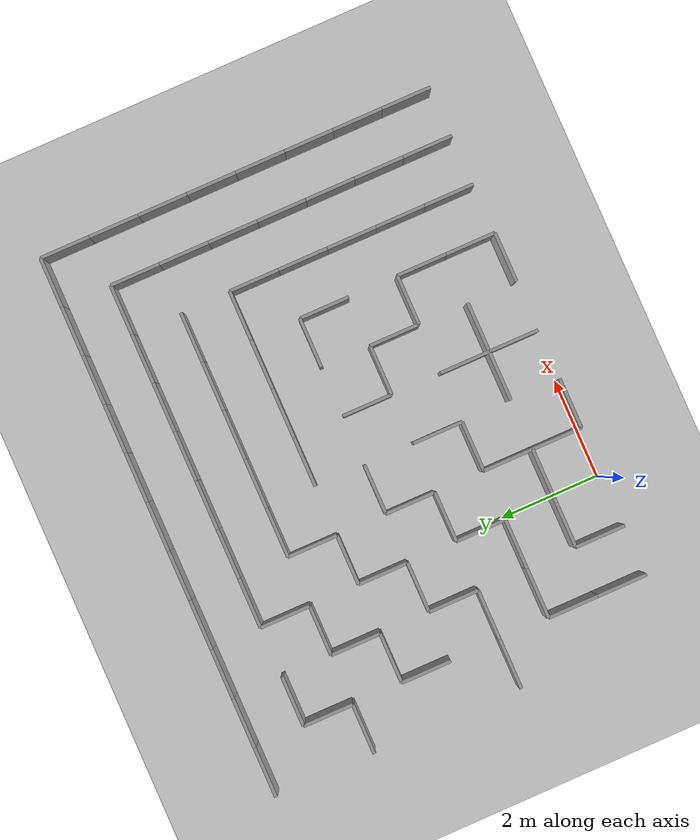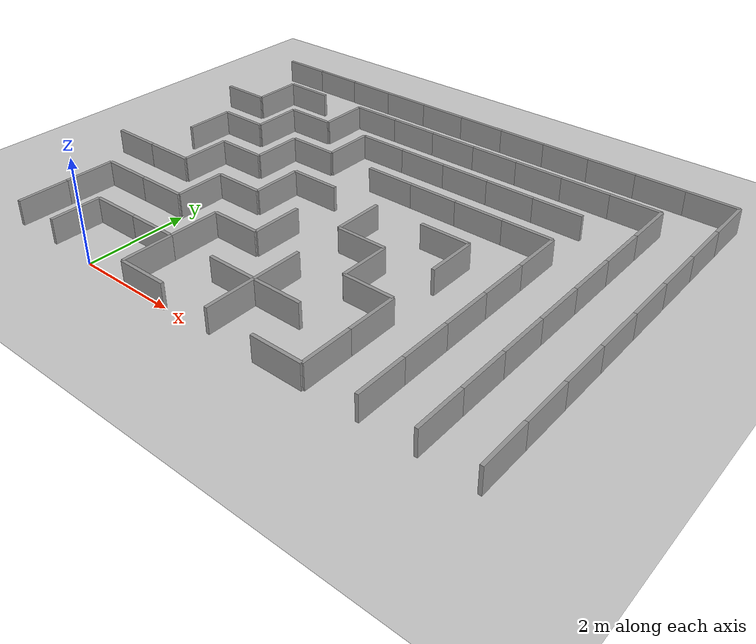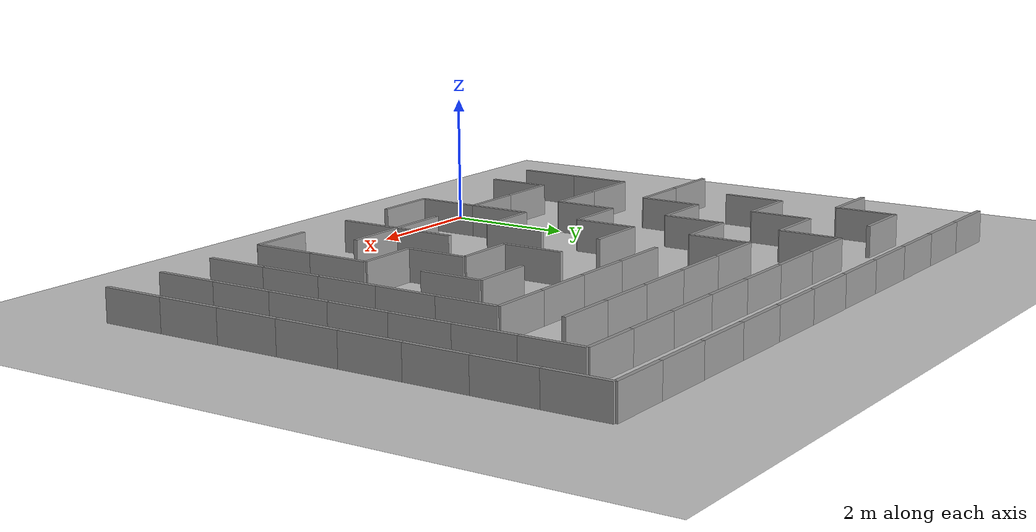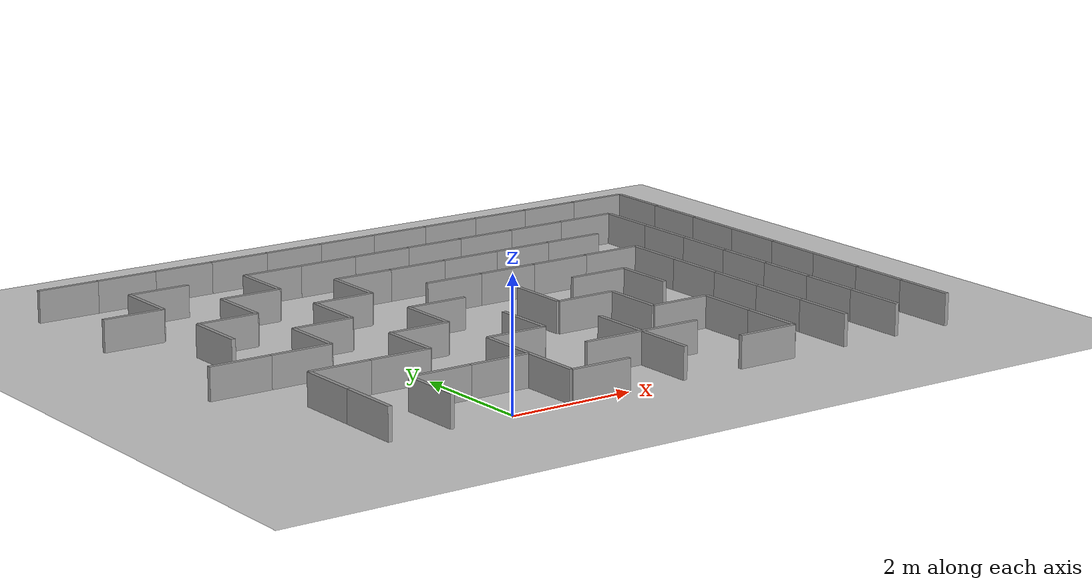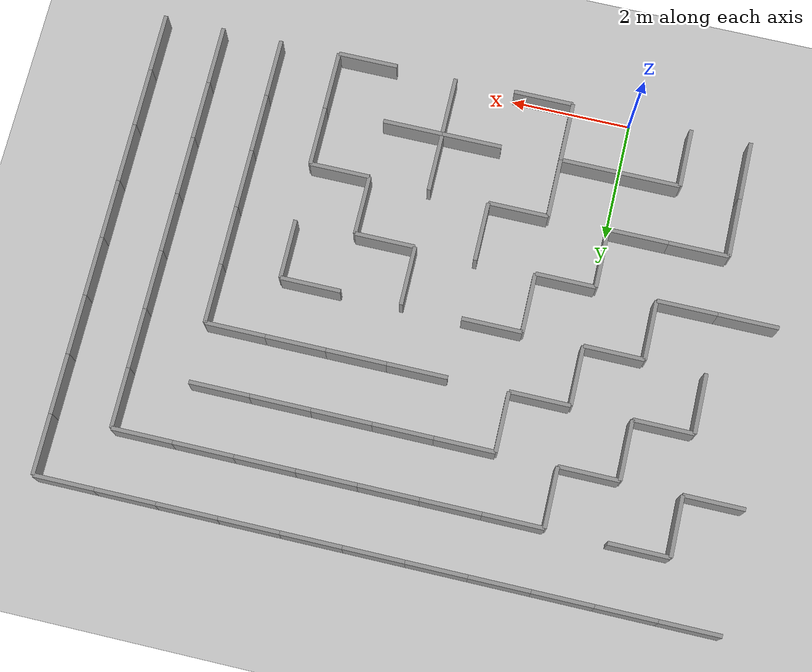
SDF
<sdf version="1.7">
 <world name="maze_world">
  <include><uri>model://sun</uri></include>
  <include><uri>model://ground_plane</uri></include>
  <model name="wall_5">
   <static>true</static>
   <pose>-2.5 8.0 0.25 0 0 0</pose>
   <link name="link">
    <collision name="collision"><geometry><box><size>1.0 0.066 0.5</size></box></geometry></collision>
    <visual name="visual">
     <geometry><box><size>1.0 0.066 0.5</size></box></geometry>
     <material>
      <script><uri>file://media/materials/scripts/gazebo.material</uri><name>Gazebo/Grey</name></script>
     </material>
    </visual>
   </link>
  </model>
  <model name="wall_6">
   <static>true</static>
   <pose>-1.5 8.0 0.25 0 0 0</pose>
   <link name="link">
    <collision name="collision"><geometry><box><size>1.0 0.066 0.5</size></box></geometry></collision>
    <visual name="visual">
     <geometry><box><size>1.0 0.066 0.5</size></box></geometry>
     <material>
      <script><uri>file://media/materials/scripts/gazebo.material</uri><name>Gazebo/Grey</name></script>
     </material>
    </visual>
   </link>
  </model>
  <model name="wall_7">
   <static>true</static>
   <pose>-0.5 8.0 0.25 0 0 0</pose>
   <link name="link">
    <collision name="collision"><geometry><box><size>1.0 0.066 0.5</size></box></geometry></collision>
    <visual name="visual">
     <geometry><box><size>1.0 0.066 0.5</size></box></geometry>
     <material>
      <script><uri>file://media/materials/scripts/gazebo.material</uri><name>Gazebo/Grey</name></script>
     </material>
    </visual>
   </link>
  </model>
  <model name="wall_8">
   <static>true</static>
   <pose>0.5 8.0 0.25 0 0 0</pose>
   <link name="link">
    <collision name="collision"><geometry><box><size>1.0 0.066 0.5</size></box></geometry></collision>
    <visual name="visual">
     <geometry><box><size>1.0 0.066 0.5</size></box></geometry>
     <material>
      <script><uri>file://media/materials/scripts/gazebo.material</uri><name>Gazebo/Grey</name></script>
     </material>
    </visual>
   </link>
  </model>
  <model name="wall_9">
   <static>true</static>
   <pose>1.5 8.0 0.25 0 0 0</pose>
   <link name="link">
    <collision name="collision"><geometry><box><size>1.0 0.066 0.5</size></box></geometry></collision>
    <visual name="visual">
     <geometry><box><size>1.0 0.066 0.5</size></box></geometry>
     <material>
      <script><uri>file://media/materials/scripts/gazebo.material</uri><name>Gazebo/Grey</name></script>
     </material>
    </visual>
   </link>
  </model>
  <model name="wall_10">
   <static>true</static>
   <pose>2.5 8.0 0.25 0 0 0</pose>
   <link name="link">
    <collision name="collision"><geometry><box><size>1.0 0.066 0.5</size></box></geometry></collision>
    <visual name="visual">
     <geometry><box><size>1.0 0.066 0.5</size></box></geometry>
     <material>
      <script><uri>file://media/materials/scripts/gazebo.material</uri><name>Gazebo/Grey</name></script>
     </material>
    </visual>
   </link>
  </model>
  <model name="wall_11">
   <static>true</static>
   <pose>3.5 8.0 0.25 0 0 0</pose>
   <link name="link">
    <collision name="collision"><geometry><box><size>1.0 0.066 0.5</size></box></geometry></collision>
    <visual name="visual">
     <geometry><box><size>1.0 0.066 0.5</size></box></geometry>
     <material>
      <script><uri>file://media/materials/scripts/gazebo.material</uri><name>Gazebo/Grey</name></script>
     </material>
    </visual>
   </link>
  </model>
  <model name="wall_12">
   <static>true</static>
   <pose>4.5 8.0 0.25 0 0 0</pose>
   <link name="link">
    <collision name="collision"><geometry><box><size>1.0 0.066 0.5</size></box></geometry></collision>
    <visual name="visual">
     <geometry><box><size>1.0 0.066 0.5</size></box></geometry>
     <material>
      <script><uri>file://media/materials/scripts/gazebo.material</uri><name>Gazebo/Grey</name></script>
     </material>
    </visual>
   </link>
  </model>
  <model name="wall_13">
   <static>true</static>
   <pose>5.5 8.0 0.25 0 0 0</pose>
   <link name="link">
    <collision name="collision"><geometry><box><size>1.0 0.066 0.5</size></box></geometry></collision>
    <visual name="visual">
     <geometry><box><size>1.0 0.066 0.5</size></box></geometry>
     <material>
      <script><uri>file://media/materials/scripts/gazebo.material</uri><name>Gazebo/Grey</name></script>
     </material>
    </visual>
   </link>
  </model>
  <model name="wall_14">
   <static>true</static>
   <pose>6.5 8.0 0.25 0 0 0</pose>
   <link name="link">
    <collision name="collision"><geometry><box><size>1.0 0.066 0.5</size></box></geometry></collision>
    <visual name="visual">
     <geometry><box><size>1.0 0.066 0.5</size></box></geometry>
     <material>
      <script><uri>file://media/materials/scripts/gazebo.material</uri><name>Gazebo/Grey</name></script>
     </material>
    </visual>
   </link>
  </model>
  <model name="wall_15">
   <static>true</static>
   <pose>7.5 8.0 0.25 0 0 0</pose>
   <link name="link">
    <collision name="collision"><geometry><box><size>1.0 0.066 0.5</size></box></geometry></collision>
    <visual name="visual">
     <geometry><box><size>1.0 0.066 0.5</size></box></geometry>
     <material>
      <script><uri>file://media/materials/scripts/gazebo.material</uri><name>Gazebo/Grey</name></script>
     </material>
    </visual>
   </link>
  </model>
  <model name="wall_18">
   <static>true</static>
   <pose>8.0 7.5 0.25 0 0 1.5707963267948966</pose>
   <link name="link">
    <collision name="collision"><geometry><box><size>1.0 0.066 0.5</size></box></geometry></collision>
    <visual name="visual">
     <geometry><box><size>1.0 0.066 0.5</size></box></geometry>
     <material>
      <script><uri>file://media/materials/scripts/gazebo.material</uri><name>Gazebo/Grey</name></script>
     </material>
    </visual>
   </link>
  </model>
  <model name="wall_22">
   <static>true</static>
   <pose>-1.5 7.0 0.25 0 0 0</pose>
   <link name="link">
    <collision name="collision"><geometry><box><size>1.0 0.066 0.5</size></box></geometry></collision>
    <visual name="visual">
     <geometry><box><size>1.0 0.066 0.5</size></box></geometry>
     <material>
      <script><uri>file://media/materials/scripts/gazebo.material</uri><name>Gazebo/Grey</name></script>
     </material>
    </visual>
   </link>
  </model>
  <model name="wall_23">
   <static>true</static>
   <pose>0.5 7.0 0.25 0 0 0</pose>
   <link name="link">
    <collision name="collision"><geometry><box><size>1.0 0.066 0.5</size></box></geometry></collision>
    <visual name="visual">
     <geometry><box><size>1.0 0.066 0.5</size></box></geometry>
     <material>
      <script><uri>file://media/materials/scripts/gazebo.material</uri><name>Gazebo/Grey</name></script>
     </material>
    </visual>
   </link>
  </model>
  <model name="wall_24">
   <static>true</static>
   <pose>1.5 7.0 0.25 0 0 0</pose>
   <link name="link">
    <collision name="collision"><geometry><box><size>1.0 0.066 0.5</size></box></geometry></collision>
    <visual name="visual">
     <geometry><box><size>1.0 0.066 0.5</size></box></geometry>
     <material>
      <script><uri>file://media/materials/scripts/gazebo.material</uri><name>Gazebo/Grey</name></script>
     </material>
    </visual>
   </link>
  </model>
  <model name="wall_25">
   <static>true</static>
   <pose>2.5 7.0 0.25 0 0 0</pose>
   <link name="link">
    <collision name="collision"><geometry><box><size>1.0 0.066 0.5</size></box></geometry></collision>
    <visual name="visual">
     <geometry><box><size>1.0 0.066 0.5</size></box></geometry>
     <material>
      <script><uri>file://media/materials/scripts/gazebo.material</uri><name>Gazebo/Grey</name></script>
     </material>
    </visual>
   </link>
  </model>
  <model name="wall_26">
   <static>true</static>
   <pose>3.5 7.0 0.25 0 0 0</pose>
   <link name="link">
    <collision name="collision"><geometry><box><size>1.0 0.066 0.5</size></box></geometry></collision>
    <visual name="visual">
     <geometry><box><size>1.0 0.066 0.5</size></box></geometry>
     <material>
      <script><uri>file://media/materials/scripts/gazebo.material</uri><name>Gazebo/Grey</name></script>
     </material>
    </visual>
   </link>
  </model>
  <model name="wall_27">
   <static>true</static>
   <pose>4.5 7.0 0.25 0 0 0</pose>
   <link name="link">
    <collision name="collision"><geometry><box><size>1.0 0.066 0.5</size></box></geometry></collision>
    <visual name="visual">
     <geometry><box><size>1.0 0.066 0.5</size></box></geometry>
     <material>
      <script><uri>file://media/materials/scripts/gazebo.material</uri><name>Gazebo/Grey</name></script>
     </material>
    </visual>
   </link>
  </model>
  <model name="wall_28">
   <static>true</static>
   <pose>5.5 7.0 0.25 0 0 0</pose>
   <link name="link">
    <collision name="collision"><geometry><box><size>1.0 0.066 0.5</size></box></geometry></collision>
    <visual name="visual">
     <geometry><box><size>1.0 0.066 0.5</size></box></geometry>
     <material>
      <script><uri>file://media/materials/scripts/gazebo.material</uri><name>Gazebo/Grey</name></script>
     </material>
    </visual>
   </link>
  </model>
  <model name="wall_29">
   <static>true</static>
   <pose>6.5 7.0 0.25 0 0 0</pose>
   <link name="link">
    <collision name="collision"><geometry><box><size>1.0 0.066 0.5</size></box></geometry></collision>
    <visual name="visual">
     <geometry><box><size>1.0 0.066 0.5</size></box></geometry>
     <material>
      <script><uri>file://media/materials/scripts/gazebo.material</uri><name>Gazebo/Grey</name></script>
     </material>
    </visual>
   </link>
  </model>
  <model name="wall_33">
   <static>true</static>
   <pose>-2.0 6.5 0.25 0 0 1.5707963267948966</pose>
   <link name="link">
    <collision name="collision"><geometry><box><size>1.0 0.066 0.5</size></box></geometry></collision>
    <visual name="visual">
     <geometry><box><size>1.0 0.066 0.5</size></box></geometry>
     <material>
      <script><uri>file://media/materials/scripts/gazebo.material</uri><name>Gazebo/Grey</name></script>
     </material>
    </visual>
   </link>
  </model>
  <model name="wall_34">
   <static>true</static>
   <pose>0.0 6.5 0.25 0 0 1.5707963267948966</pose>
   <link name="link">
    <collision name="collision"><geometry><box><size>1.0 0.066 0.5</size></box></geometry></collision>
    <visual name="visual">
     <geometry><box><size>1.0 0.066 0.5</size></box></geometry>
     <material>
      <script><uri>file://media/materials/scripts/gazebo.material</uri><name>Gazebo/Grey</name></script>
     </material>
    </visual>
   </link>
  </model>
  <model name="wall_35">
   <static>true</static>
   <pose>7.0 6.5 0.25 0 0 1.5707963267948966</pose>
   <link name="link">
    <collision name="collision"><geometry><box><size>1.0 0.066 0.5</size></box></geometry></collision>
    <visual name="visual">
     <geometry><box><size>1.0 0.066 0.5</size></box></geometry>
     <material>
      <script><uri>file://media/materials/scripts/gazebo.material</uri><name>Gazebo/Grey</name></script>
     </material>
    </visual>
   </link>
  </model>
  <model name="wall_36">
   <static>true</static>
   <pose>8.0 6.5 0.25 0 0 1.5707963267948966</pose>
   <link name="link">
    <collision name="collision"><geometry><box><size>1.0 0.066 0.5</size></box></geometry></collision>
    <visual name="visual">
     <geometry><box><size>1.0 0.066 0.5</size></box></geometry>
     <material>
      <script><uri>file://media/materials/scripts/gazebo.material</uri><name>Gazebo/Grey</name></script>
     </material>
    </visual>
   </link>
  </model>
  <model name="wall_39">
   <static>true</static>
   <pose>-2.5 6.0 0.25 0 0 0</pose>
   <link name="link">
    <collision name="collision"><geometry><box><size>1.0 0.066 0.5</size></box></geometry></collision>
    <visual name="visual">
     <geometry><box><size>1.0 0.066 0.5</size></box></geometry>
     <material>
      <script><uri>file://media/materials/scripts/gazebo.material</uri><name>Gazebo/Grey</name></script>
     </material>
    </visual>
   </link>
  </model>
  <model name="wall_40">
   <static>true</static>
   <pose>-0.5 6.0 0.25 0 0 0</pose>
   <link name="link">
    <collision name="collision"><geometry><box><size>1.0 0.066 0.5</size></box></geometry></collision>
    <visual name="visual">
     <geometry><box><size>1.0 0.066 0.5</size></box></geometry>
     <material>
      <script><uri>file://media/materials/scripts/gazebo.material</uri><name>Gazebo/Grey</name></script>
     </material>
    </visual>
   </link>
  </model>
  <model name="wall_41">
   <static>true</static>
   <pose>1.5 6.0 0.25 0 0 0</pose>
   <link name="link">
    <collision name="collision"><geometry><box><size>1.0 0.066 0.5</size></box></geometry></collision>
    <visual name="visual">
     <geometry><box><size>1.0 0.066 0.5</size></box></geometry>
     <material>
      <script><uri>file://media/materials/scripts/gazebo.material</uri><name>Gazebo/Grey</name></script>
     </material>
    </visual>
   </link>
  </model>
  <model name="wall_42">
   <static>true</static>
   <pose>2.5 6.0 0.25 0 0 0</pose>
   <link name="link">
    <collision name="collision"><geometry><box><size>1.0 0.066 0.5</size></box></geometry></collision>
    <visual name="visual">
     <geometry><box><size>1.0 0.066 0.5</size></box></geometry>
     <material>
      <script><uri>file://media/materials/scripts/gazebo.material</uri><name>Gazebo/Grey</name></script>
     </material>
    </visual>
   </link>
  </model>
  <model name="wall_43">
   <static>true</static>
   <pose>3.5 6.0 0.25 0 0 0</pose>
   <link name="link">
    <collision name="collision"><geometry><box><size>1.0 0.066 0.5</size></box></geometry></collision>
    <visual name="visual">
     <geometry><box><size>1.0 0.066 0.5</size></box></geometry>
     <material>
      <script><uri>file://media/materials/scripts/gazebo.material</uri><name>Gazebo/Grey</name></script>
     </material>
    </visual>
   </link>
  </model>
  <model name="wall_44">
   <static>true</static>
   <pose>4.5 6.0 0.25 0 0 0</pose>
   <link name="link">
    <collision name="collision"><geometry><box><size>1.0 0.066 0.5</size></box></geometry></collision>
    <visual name="visual">
     <geometry><box><size>1.0 0.066 0.5</size></box></geometry>
     <material>
      <script><uri>file://media/materials/scripts/gazebo.material</uri><name>Gazebo/Grey</name></script>
     </material>
    </visual>
   </link>
  </model>
  <model name="wall_45">
   <static>true</static>
   <pose>5.5 6.0 0.25 0 0 0</pose>
   <link name="link">
    <collision name="collision"><geometry><box><size>1.0 0.066 0.5</size></box></geometry></collision>
    <visual name="visual">
     <geometry><box><size>1.0 0.066 0.5</size></box></geometry>
     <material>
      <script><uri>file://media/materials/scripts/gazebo.material</uri><name>Gazebo/Grey</name></script>
     </material>
    </visual>
   </link>
  </model>
  <model name="wall_49">
   <static>true</static>
   <pose>-1.0 5.5 0.25 0 0 1.5707963267948966</pose>
   <link name="link">
    <collision name="collision"><geometry><box><size>1.0 0.066 0.5</size></box></geometry></collision>
    <visual name="visual">
     <geometry><box><size>1.0 0.066 0.5</size></box></geometry>
     <material>
      <script><uri>file://media/materials/scripts/gazebo.material</uri><name>Gazebo/Grey</name></script>
     </material>
    </visual>
   </link>
  </model>
  <model name="wall_50">
   <static>true</static>
   <pose>1.0 5.5 0.25 0 0 1.5707963267948966</pose>
   <link name="link">
    <collision name="collision"><geometry><box><size>1.0 0.066 0.5</size></box></geometry></collision>
    <visual name="visual">
     <geometry><box><size>1.0 0.066 0.5</size></box></geometry>
     <material>
      <script><uri>file://media/materials/scripts/gazebo.material</uri><name>Gazebo/Grey</name></script>
     </material>
    </visual>
   </link>
  </model>
  <model name="wall_51">
   <static>true</static>
   <pose>7.0 5.5 0.25 0 0 1.5707963267948966</pose>
   <link name="link">
    <collision name="collision"><geometry><box><size>1.0 0.066 0.5</size></box></geometry></collision>
    <visual name="visual">
     <geometry><box><size>1.0 0.066 0.5</size></box></geometry>
     <material>
      <script><uri>file://media/materials/scripts/gazebo.material</uri><name>Gazebo/Grey</name></script>
     </material>
    </visual>
   </link>
  </model>
  <model name="wall_52">
   <static>true</static>
   <pose>8.0 5.5 0.25 0 0 1.5707963267948966</pose>
   <link name="link">
    <collision name="collision"><geometry><box><size>1.0 0.066 0.5</size></box></geometry></collision>
    <visual name="visual">
     <geometry><box><size>1.0 0.066 0.5</size></box></geometry>
     <material>
      <script><uri>file://media/materials/scripts/gazebo.material</uri><name>Gazebo/Grey</name></script>
     </material>
    </visual>
   </link>
  </model>
  <model name="wall_56">
   <static>true</static>
   <pose>-1.5 5.0 0.25 0 0 0</pose>
   <link name="link">
    <collision name="collision"><geometry><box><size>1.0 0.066 0.5</size></box></geometry></collision>
    <visual name="visual">
     <geometry><box><size>1.0 0.066 0.5</size></box></geometry>
     <material>
      <script><uri>file://media/materials/scripts/gazebo.material</uri><name>Gazebo/Grey</name></script>
     </material>
    </visual>
   </link>
  </model>
  <model name="wall_57">
   <static>true</static>
   <pose>0.5 5.0 0.25 0 0 0</pose>
   <link name="link">
    <collision name="collision"><geometry><box><size>1.0 0.066 0.5</size></box></geometry></collision>
    <visual name="visual">
     <geometry><box><size>1.0 0.066 0.5</size></box></geometry>
     <material>
      <script><uri>file://media/materials/scripts/gazebo.material</uri><name>Gazebo/Grey</name></script>
     </material>
    </visual>
   </link>
  </model>
  <model name="wall_58">
   <static>true</static>
   <pose>2.5 5.0 0.25 0 0 0</pose>
   <link name="link">
    <collision name="collision"><geometry><box><size>1.0 0.066 0.5</size></box></geometry></collision>
    <visual name="visual">
     <geometry><box><size>1.0 0.066 0.5</size></box></geometry>
     <material>
      <script><uri>file://media/materials/scripts/gazebo.material</uri><name>Gazebo/Grey</name></script>
     </material>
    </visual>
   </link>
  </model>
  <model name="wall_59">
   <static>true</static>
   <pose>3.5 5.0 0.25 0 0 0</pose>
   <link name="link">
    <collision name="collision"><geometry><box><size>1.0 0.066 0.5</size></box></geometry></collision>
    <visual name="visual">
     <geometry><box><size>1.0 0.066 0.5</size></box></geometry>
     <material>
      <script><uri>file://media/materials/scripts/gazebo.material</uri><name>Gazebo/Grey</name></script>
     </material>
    </visual>
   </link>
  </model>
  <model name="wall_60">
   <static>true</static>
   <pose>4.5 5.0 0.25 0 0 0</pose>
   <link name="link">
    <collision name="collision"><geometry><box><size>1.0 0.066 0.5</size></box></geometry></collision>
    <visual name="visual">
     <geometry><box><size>1.0 0.066 0.5</size></box></geometry>
     <material>
      <script><uri>file://media/materials/scripts/gazebo.material</uri><name>Gazebo/Grey</name></script>
     </material>
    </visual>
   </link>
  </model>
  <model name="wall_61">
   <static>true</static>
   <pose>5.5 5.0 0.25 0 0 0</pose>
   <link name="link">
    <collision name="collision"><geometry><box><size>1.0 0.066 0.5</size></box></geometry></collision>
    <visual name="visual">
     <geometry><box><size>1.0 0.066 0.5</size></box></geometry>
     <material>
      <script><uri>file://media/materials/scripts/gazebo.material</uri><name>Gazebo/Grey</name></script>
     </material>
    </visual>
   </link>
  </model>
  <model name="wall_66">
   <static>true</static>
   <pose>-2.0 4.5 0.25 0 0 1.5707963267948966</pose>
   <link name="link">
    <collision name="collision"><geometry><box><size>1.0 0.066 0.5</size></box></geometry></collision>
    <visual name="visual">
     <geometry><box><size>1.0 0.066 0.5</size></box></geometry>
     <material>
      <script><uri>file://media/materials/scripts/gazebo.material</uri><name>Gazebo/Grey</name></script>
     </material>
    </visual>
   </link>
  </model>
  <model name="wall_67">
   <static>true</static>
   <pose>0.0 4.5 0.25 0 0 1.5707963267948966</pose>
   <link name="link">
    <collision name="collision"><geometry><box><size>1.0 0.066 0.5</size></box></geometry></collision>
    <visual name="visual">
     <geometry><box><size>1.0 0.066 0.5</size></box></geometry>
     <material>
      <script><uri>file://media/materials/scripts/gazebo.material</uri><name>Gazebo/Grey</name></script>
     </material>
    </visual>
   </link>
  </model>
  <model name="wall_68">
   <static>true</static>
   <pose>6.0 4.5 0.25 0 0 1.5707963267948966</pose>
   <link name="link">
    <collision name="collision"><geometry><box><size>1.0 0.066 0.5</size></box></geometry></collision>
    <visual name="visual">
     <geometry><box><size>1.0 0.066 0.5</size></box></geometry>
     <material>
      <script><uri>file://media/materials/scripts/gazebo.material</uri><name>Gazebo/Grey</name></script>
     </material>
    </visual>
   </link>
  </model>
  <model name="wall_69">
   <static>true</static>
   <pose>7.0 4.5 0.25 0 0 1.5707963267948966</pose>
   <link name="link">
    <collision name="collision"><geometry><box><size>1.0 0.066 0.5</size></box></geometry></collision>
    <visual name="visual">
     <geometry><box><size>1.0 0.066 0.5</size></box></geometry>
     <material>
      <script><uri>file://media/materials/scripts/gazebo.material</uri><name>Gazebo/Grey</name></script>
     </material>
    </visual>
   </link>
  </model>
  <model name="wall_70">
   <static>true</static>
   <pose>8.0 4.5 0.25 0 0 1.5707963267948966</pose>
   <link name="link">
    <collision name="collision"><geometry><box><size>1.0 0.066 0.5</size></box></geometry></collision>
    <visual name="visual">
     <geometry><box><size>1.0 0.066 0.5</size></box></geometry>
     <material>
      <script><uri>file://media/materials/scripts/gazebo.material</uri><name>Gazebo/Grey</name></script>
     </material>
    </visual>
   </link>
  </model>
  <model name="wall_72">
   <static>true</static>
   <pose>-0.5 4.0 0.25 0 0 0</pose>
   <link name="link">
    <collision name="collision"><geometry><box><size>1.0 0.066 0.5</size></box></geometry></collision>
    <visual name="visual">
     <geometry><box><size>1.0 0.066 0.5</size></box></geometry>
     <material>
      <script><uri>file://media/materials/scripts/gazebo.material</uri><name>Gazebo/Grey</name></script>
     </material>
    </visual>
   </link>
  </model>
  <model name="wall_73">
   <static>true</static>
   <pose>1.5 4.0 0.25 0 0 0</pose>
   <link name="link">
    <collision name="collision"><geometry><box><size>1.0 0.066 0.5</size></box></geometry></collision>
    <visual name="visual">
     <geometry><box><size>1.0 0.066 0.5</size></box></geometry>
     <material>
      <script><uri>file://media/materials/scripts/gazebo.material</uri><name>Gazebo/Grey</name></script>
     </material>
    </visual>
   </link>
  </model>
  <model name="wall_74">
   <static>true</static>
   <pose>4.5 4.0 0.25 0 0 0</pose>
   <link name="link">
    <collision name="collision"><geometry><box><size>1.0 0.066 0.5</size></box></geometry></collision>
    <visual name="visual">
     <geometry><box><size>1.0 0.066 0.5</size></box></geometry>
     <material>
      <script><uri>file://media/materials/scripts/gazebo.material</uri><name>Gazebo/Grey</name></script>
     </material>
    </visual>
   </link>
  </model>
  <model name="wall_79">
   <static>true</static>
   <pose>-1.0 3.5 0.25 0 0 1.5707963267948966</pose>
   <link name="link">
    <collision name="collision"><geometry><box><size>1.0 0.066 0.5</size></box></geometry></collision>
    <visual name="visual">
     <geometry><box><size>1.0 0.066 0.5</size></box></geometry>
     <material>
      <script><uri>file://media/materials/scripts/gazebo.material</uri><name>Gazebo/Grey</name></script>
     </material>
    </visual>
   </link>
  </model>
  <model name="wall_80">
   <static>true</static>
   <pose>1.0 3.5 0.25 0 0 1.5707963267948966</pose>
   <link name="link">
    <collision name="collision"><geometry><box><size>1.0 0.066 0.5</size></box></geometry></collision>
    <visual name="visual">
     <geometry><box><size>1.0 0.066 0.5</size></box></geometry>
     <material>
      <script><uri>file://media/materials/scripts/gazebo.material</uri><name>Gazebo/Grey</name></script>
     </material>
    </visual>
   </link>
  </model>
  <model name="wall_81">
   <static>true</static>
   <pose>3.0 3.5 0.25 0 0 1.5707963267948966</pose>
   <link name="link">
    <collision name="collision"><geometry><box><size>1.0 0.066 0.5</size></box></geometry></collision>
    <visual name="visual">
     <geometry><box><size>1.0 0.066 0.5</size></box></geometry>
     <material>
      <script><uri>file://media/materials/scripts/gazebo.material</uri><name>Gazebo/Grey</name></script>
     </material>
    </visual>
   </link>
  </model>
  <model name="wall_82">
   <static>true</static>
   <pose>5.0 3.5 0.25 0 0 1.5707963267948966</pose>
   <link name="link">
    <collision name="collision"><geometry><box><size>1.0 0.066 0.5</size></box></geometry></collision>
    <visual name="visual">
     <geometry><box><size>1.0 0.066 0.5</size></box></geometry>
     <material>
      <script><uri>file://media/materials/scripts/gazebo.material</uri><name>Gazebo/Grey</name></script>
     </material>
    </visual>
   </link>
  </model>
  <model name="wall_83">
   <static>true</static>
   <pose>6.0 3.5 0.25 0 0 1.5707963267948966</pose>
   <link name="link">
    <collision name="collision"><geometry><box><size>1.0 0.066 0.5</size></box></geometry></collision>
    <visual name="visual">
     <geometry><box><size>1.0 0.066 0.5</size></box></geometry>
     <material>
      <script><uri>file://media/materials/scripts/gazebo.material</uri><name>Gazebo/Grey</name></script>
     </material>
    </visual>
   </link>
  </model>
  <model name="wall_84">
   <static>true</static>
   <pose>7.0 3.5 0.25 0 0 1.5707963267948966</pose>
   <link name="link">
    <collision name="collision"><geometry><box><size>1.0 0.066 0.5</size></box></geometry></collision>
    <visual name="visual">
     <geometry><box><size>1.0 0.066 0.5</size></box></geometry>
     <material>
      <script><uri>file://media/materials/scripts/gazebo.material</uri><name>Gazebo/Grey</name></script>
     </material>
    </visual>
   </link>
  </model>
  <model name="wall_85">
   <static>true</static>
   <pose>8.0 3.5 0.25 0 0 1.5707963267948966</pose>
   <link name="link">
    <collision name="collision"><geometry><box><size>1.0 0.066 0.5</size></box></geometry></collision>
    <visual name="visual">
     <geometry><box><size>1.0 0.066 0.5</size></box></geometry>
     <material>
      <script><uri>file://media/materials/scripts/gazebo.material</uri><name>Gazebo/Grey</name></script>
     </material>
    </visual>
   </link>
  </model>
  <model name="wall_88">
   <static>true</static>
   <pose>-2.5 3.0 0.25 0 0 0</pose>
   <link name="link">
    <collision name="collision"><geometry><box><size>1.0 0.066 0.5</size></box></geometry></collision>
    <visual name="visual">
     <geometry><box><size>1.0 0.066 0.5</size></box></geometry>
     <material>
      <script><uri>file://media/materials/scripts/gazebo.material</uri><name>Gazebo/Grey</name></script>
     </material>
    </visual>
   </link>
  </model>
  <model name="wall_89">
   <static>true</static>
   <pose>-1.5 3.0 0.25 0 0 0</pose>
   <link name="link">
    <collision name="collision"><geometry><box><size>1.0 0.066 0.5</size></box></geometry></collision>
    <visual name="visual">
     <geometry><box><size>1.0 0.066 0.5</size></box></geometry>
     <material>
      <script><uri>file://media/materials/scripts/gazebo.material</uri><name>Gazebo/Grey</name></script>
     </material>
    </visual>
   </link>
  </model>
  <model name="wall_90">
   <static>true</static>
   <pose>0.5 3.0 0.25 0 0 0</pose>
   <link name="link">
    <collision name="collision"><geometry><box><size>1.0 0.066 0.5</size></box></geometry></collision>
    <visual name="visual">
     <geometry><box><size>1.0 0.066 0.5</size></box></geometry>
     <material>
      <script><uri>file://media/materials/scripts/gazebo.material</uri><name>Gazebo/Grey</name></script>
     </material>
    </visual>
   </link>
  </model>
  <model name="wall_91">
   <static>true</static>
   <pose>3.5 3.0 0.25 0 0 0</pose>
   <link name="link">
    <collision name="collision"><geometry><box><size>1.0 0.066 0.5</size></box></geometry></collision>
    <visual name="visual">
     <geometry><box><size>1.0 0.066 0.5</size></box></geometry>
     <material>
      <script><uri>file://media/materials/scripts/gazebo.material</uri><name>Gazebo/Grey</name></script>
     </material>
    </visual>
   </link>
  </model>
  <model name="wall_96">
   <static>true</static>
   <pose>0.0 2.5 0.25 0 0 1.5707963267948966</pose>
   <link name="link">
    <collision name="collision"><geometry><box><size>1.0 0.066 0.5</size></box></geometry></collision>
    <visual name="visual">
     <geometry><box><size>1.0 0.066 0.5</size></box></geometry>
     <material>
      <script><uri>file://media/materials/scripts/gazebo.material</uri><name>Gazebo/Grey</name></script>
     </material>
    </visual>
   </link>
  </model>
  <model name="wall_97">
   <static>true</static>
   <pose>2.0 2.5 0.25 0 0 1.5707963267948966</pose>
   <link name="link">
    <collision name="collision"><geometry><box><size>1.0 0.066 0.5</size></box></geometry></collision>
    <visual name="visual">
     <geometry><box><size>1.0 0.066 0.5</size></box></geometry>
     <material>
      <script><uri>file://media/materials/scripts/gazebo.material</uri><name>Gazebo/Grey</name></script>
     </material>
    </visual>
   </link>
  </model>
  <model name="wall_98">
   <static>true</static>
   <pose>4.0 2.5 0.25 0 0 1.5707963267948966</pose>
   <link name="link">
    <collision name="collision"><geometry><box><size>1.0 0.066 0.5</size></box></geometry></collision>
    <visual name="visual">
     <geometry><box><size>1.0 0.066 0.5</size></box></geometry>
     <material>
      <script><uri>file://media/materials/scripts/gazebo.material</uri><name>Gazebo/Grey</name></script>
     </material>
    </visual>
   </link>
  </model>
  <model name="wall_99">
   <static>true</static>
   <pose>6.0 2.5 0.25 0 0 1.5707963267948966</pose>
   <link name="link">
    <collision name="collision"><geometry><box><size>1.0 0.066 0.5</size></box></geometry></collision>
    <visual name="visual">
     <geometry><box><size>1.0 0.066 0.5</size></box></geometry>
     <material>
      <script><uri>file://media/materials/scripts/gazebo.material</uri><name>Gazebo/Grey</name></script>
     </material>
    </visual>
   </link>
  </model>
  <model name="wall_100">
   <static>true</static>
   <pose>7.0 2.5 0.25 0 0 1.5707963267948966</pose>
   <link name="link">
    <collision name="collision"><geometry><box><size>1.0 0.066 0.5</size></box></geometry></collision>
    <visual name="visual">
     <geometry><box><size>1.0 0.066 0.5</size></box></geometry>
     <material>
      <script><uri>file://media/materials/scripts/gazebo.material</uri><name>Gazebo/Grey</name></script>
     </material>
    </visual>
   </link>
  </model>
  <model name="wall_101">
   <static>true</static>
   <pose>8.0 2.5 0.25 0 0 1.5707963267948966</pose>
   <link name="link">
    <collision name="collision"><geometry><box><size>1.0 0.066 0.5</size></box></geometry></collision>
    <visual name="visual">
     <geometry><box><size>1.0 0.066 0.5</size></box></geometry>
     <material>
      <script><uri>file://media/materials/scripts/gazebo.material</uri><name>Gazebo/Grey</name></script>
     </material>
    </visual>
   </link>
  </model>
  <model name="wall_104">
   <static>true</static>
   <pose>-1.5 2.0 0.25 0 0 0</pose>
   <link name="link">
    <collision name="collision"><geometry><box><size>1.0 0.066 0.5</size></box></geometry></collision>
    <visual name="visual">
     <geometry><box><size>1.0 0.066 0.5</size></box></geometry>
     <material>
      <script><uri>file://media/materials/scripts/gazebo.material</uri><name>Gazebo/Grey</name></script>
     </material>
    </visual>
   </link>
  </model>
  <model name="wall_105">
   <static>true</static>
   <pose>-0.5 2.0 0.25 0 0 0</pose>
   <link name="link">
    <collision name="collision"><geometry><box><size>1.0 0.066 0.5</size></box></geometry></collision>
    <visual name="visual">
     <geometry><box><size>1.0 0.066 0.5</size></box></geometry>
     <material>
      <script><uri>file://media/materials/scripts/gazebo.material</uri><name>Gazebo/Grey</name></script>
     </material>
    </visual>
   </link>
  </model>
  <model name="wall_106">
   <static>true</static>
   <pose>1.5 2.0 0.25 0 0 0</pose>
   <link name="link">
    <collision name="collision"><geometry><box><size>1.0 0.066 0.5</size></box></geometry></collision>
    <visual name="visual">
     <geometry><box><size>1.0 0.066 0.5</size></box></geometry>
     <material>
      <script><uri>file://media/materials/scripts/gazebo.material</uri><name>Gazebo/Grey</name></script>
     </material>
    </visual>
   </link>
  </model>
  <model name="wall_107">
   <static>true</static>
   <pose>4.5 2.0 0.25 0 0 0</pose>
   <link name="link">
    <collision name="collision"><geometry><box><size>1.0 0.066 0.5</size></box></geometry></collision>
    <visual name="visual">
     <geometry><box><size>1.0 0.066 0.5</size></box></geometry>
     <material>
      <script><uri>file://media/materials/scripts/gazebo.material</uri><name>Gazebo/Grey</name></script>
     </material>
    </visual>
   </link>
  </model>
  <model name="wall_113">
   <static>true</static>
   <pose>-2.0 1.5 0.25 0 0 1.5707963267948966</pose>
   <link name="link">
    <collision name="collision"><geometry><box><size>1.0 0.066 0.5</size></box></geometry></collision>
    <visual name="visual">
     <geometry><box><size>1.0 0.066 0.5</size></box></geometry>
     <material>
      <script><uri>file://media/materials/scripts/gazebo.material</uri><name>Gazebo/Grey</name></script>
     </material>
    </visual>
   </link>
  </model>
  <model name="wall_114">
   <static>true</static>
   <pose>1.0 1.5 0.25 0 0 1.5707963267948966</pose>
   <link name="link">
    <collision name="collision"><geometry><box><size>1.0 0.066 0.5</size></box></geometry></collision>
    <visual name="visual">
     <geometry><box><size>1.0 0.066 0.5</size></box></geometry>
     <material>
      <script><uri>file://media/materials/scripts/gazebo.material</uri><name>Gazebo/Grey</name></script>
     </material>
    </visual>
   </link>
  </model>
  <model name="wall_115">
   <static>true</static>
   <pose>3.0 1.5 0.25 0 0 1.5707963267948966</pose>
   <link name="link">
    <collision name="collision"><geometry><box><size>1.0 0.066 0.5</size></box></geometry></collision>
    <visual name="visual">
     <geometry><box><size>1.0 0.066 0.5</size></box></geometry>
     <material>
      <script><uri>file://media/materials/scripts/gazebo.material</uri><name>Gazebo/Grey</name></script>
     </material>
    </visual>
   </link>
  </model>
  <model name="wall_116">
   <static>true</static>
   <pose>5.0 1.5 0.25 0 0 1.5707963267948966</pose>
   <link name="link">
    <collision name="collision"><geometry><box><size>1.0 0.066 0.5</size></box></geometry></collision>
    <visual name="visual">
     <geometry><box><size>1.0 0.066 0.5</size></box></geometry>
     <material>
      <script><uri>file://media/materials/scripts/gazebo.material</uri><name>Gazebo/Grey</name></script>
     </material>
    </visual>
   </link>
  </model>
  <model name="wall_117">
   <static>true</static>
   <pose>6.0 1.5 0.25 0 0 1.5707963267948966</pose>
   <link name="link">
    <collision name="collision"><geometry><box><size>1.0 0.066 0.5</size></box></geometry></collision>
    <visual name="visual">
     <geometry><box><size>1.0 0.066 0.5</size></box></geometry>
     <material>
      <script><uri>file://media/materials/scripts/gazebo.material</uri><name>Gazebo/Grey</name></script>
     </material>
    </visual>
   </link>
  </model>
  <model name="wall_118">
   <static>true</static>
   <pose>7.0 1.5 0.25 0 0 1.5707963267948966</pose>
   <link name="link">
    <collision name="collision"><geometry><box><size>1.0 0.066 0.5</size></box></geometry></collision>
    <visual name="visual">
     <geometry><box><size>1.0 0.066 0.5</size></box></geometry>
     <material>
      <script><uri>file://media/materials/scripts/gazebo.material</uri><name>Gazebo/Grey</name></script>
     </material>
    </visual>
   </link>
  </model>
  <model name="wall_119">
   <static>true</static>
   <pose>8.0 1.5 0.25 0 0 1.5707963267948966</pose>
   <link name="link">
    <collision name="collision"><geometry><box><size>1.0 0.066 0.5</size></box></geometry></collision>
    <visual name="visual">
     <geometry><box><size>1.0 0.066 0.5</size></box></geometry>
     <material>
      <script><uri>file://media/materials/scripts/gazebo.material</uri><name>Gazebo/Grey</name></script>
     </material>
    </visual>
   </link>
  </model>
  <model name="wall_120">
   <static>true</static>
   <pose>-0.5 1.0 0.25 0 0 0</pose>
   <link name="link">
    <collision name="collision"><geometry><box><size>1.0 0.066 0.5</size></box></geometry></collision>
    <visual name="visual">
     <geometry><box><size>1.0 0.066 0.5</size></box></geometry>
     <material>
      <script><uri>file://media/materials/scripts/gazebo.material</uri><name>Gazebo/Grey</name></script>
     </material>
    </visual>
   </link>
  </model>
  <model name="wall_121">
   <static>true</static>
   <pose>0.5 1.0 0.25 0 0 0</pose>
   <link name="link">
    <collision name="collision"><geometry><box><size>1.0 0.066 0.5</size></box></geometry></collision>
    <visual name="visual">
     <geometry><box><size>1.0 0.066 0.5</size></box></geometry>
     <material>
      <script><uri>file://media/materials/scripts/gazebo.material</uri><name>Gazebo/Grey</name></script>
     </material>
    </visual>
   </link>
  </model>
  <model name="wall_122">
   <static>true</static>
   <pose>2.5 1.0 0.25 0 0 0</pose>
   <link name="link">
    <collision name="collision"><geometry><box><size>1.0 0.066 0.5</size></box></geometry></collision>
    <visual name="visual">
     <geometry><box><size>1.0 0.066 0.5</size></box></geometry>
     <material>
      <script><uri>file://media/materials/scripts/gazebo.material</uri><name>Gazebo/Grey</name></script>
     </material>
    </visual>
   </link>
  </model>
  <model name="wall_123">
   <static>true</static>
   <pose>3.5 1.0 0.25 0 0 0</pose>
   <link name="link">
    <collision name="collision"><geometry><box><size>1.0 0.066 0.5</size></box></geometry></collision>
    <visual name="visual">
     <geometry><box><size>1.0 0.066 0.5</size></box></geometry>
     <material>
      <script><uri>file://media/materials/scripts/gazebo.material</uri><name>Gazebo/Grey</name></script>
     </material>
    </visual>
   </link>
  </model>
  <model name="wall_129">
   <static>true</static>
   <pose>-2.0 0.5 0.25 0 0 1.5707963267948966</pose>
   <link name="link">
    <collision name="collision"><geometry><box><size>1.0 0.066 0.5</size></box></geometry></collision>
    <visual name="visual">
     <geometry><box><size>1.0 0.066 0.5</size></box></geometry>
     <material>
      <script><uri>file://media/materials/scripts/gazebo.material</uri><name>Gazebo/Grey</name></script>
     </material>
    </visual>
   </link>
  </model>
  <model name="wall_130">
   <static>true</static>
   <pose>-1.0 0.5 0.25 0 0 1.5707963267948966</pose>
   <link name="link">
    <collision name="collision"><geometry><box><size>1.0 0.066 0.5</size></box></geometry></collision>
    <visual name="visual">
     <geometry><box><size>1.0 0.066 0.5</size></box></geometry>
     <material>
      <script><uri>file://media/materials/scripts/gazebo.material</uri><name>Gazebo/Grey</name></script>
     </material>
    </visual>
   </link>
  </model>
  <model name="wall_131">
   <static>true</static>
   <pose>1.0 0.5 0.25 0 0 1.5707963267948966</pose>
   <link name="link">
    <collision name="collision"><geometry><box><size>1.0 0.066 0.5</size></box></geometry></collision>
    <visual name="visual">
     <geometry><box><size>1.0 0.066 0.5</size></box></geometry>
     <material>
      <script><uri>file://media/materials/scripts/gazebo.material</uri><name>Gazebo/Grey</name></script>
     </material>
    </visual>
   </link>
  </model>
  <model name="wall_132">
   <static>true</static>
   <pose>3.0 0.5 0.25 0 0 1.5707963267948966</pose>
   <link name="link">
    <collision name="collision"><geometry><box><size>1.0 0.066 0.5</size></box></geometry></collision>
    <visual name="visual">
     <geometry><box><size>1.0 0.066 0.5</size></box></geometry>
     <material>
      <script><uri>file://media/materials/scripts/gazebo.material</uri><name>Gazebo/Grey</name></script>
     </material>
    </visual>
   </link>
  </model>
  <model name="wall_133">
   <static>true</static>
   <pose>5.0 0.5 0.25 0 0 1.5707963267948966</pose>
   <link name="link">
    <collision name="collision"><geometry><box><size>1.0 0.066 0.5</size></box></geometry></collision>
    <visual name="visual">
     <geometry><box><size>1.0 0.066 0.5</size></box></geometry>
     <material>
      <script><uri>file://media/materials/scripts/gazebo.material</uri><name>Gazebo/Grey</name></script>
     </material>
    </visual>
   </link>
  </model>
  <model name="wall_134">
   <static>true</static>
   <pose>6.0 0.5 0.25 0 0 1.5707963267948966</pose>
   <link name="link">
    <collision name="collision"><geometry><box><size>1.0 0.066 0.5</size></box></geometry></collision>
    <visual name="visual">
     <geometry><box><size>1.0 0.066 0.5</size></box></geometry>
     <material>
      <script><uri>file://media/materials/scripts/gazebo.material</uri><name>Gazebo/Grey</name></script>
     </material>
    </visual>
   </link>
  </model>
  <model name="wall_135">
   <static>true</static>
   <pose>7.0 0.5 0.25 0 0 1.5707963267948966</pose>
   <link name="link">
    <collision name="collision"><geometry><box><size>1.0 0.066 0.5</size></box></geometry></collision>
    <visual name="visual">
     <geometry><box><size>1.0 0.066 0.5</size></box></geometry>
     <material>
      <script><uri>file://media/materials/scripts/gazebo.material</uri><name>Gazebo/Grey</name></script>
     </material>
    </visual>
   </link>
  </model>
  <model name="wall_136">
   <static>true</static>
   <pose>8.0 0.5 0.25 0 0 1.5707963267948966</pose>
   <link name="link">
    <collision name="collision"><geometry><box><size>1.0 0.066 0.5</size></box></geometry></collision>
    <visual name="visual">
     <geometry><box><size>1.0 0.066 0.5</size></box></geometry>
     <material>
      <script><uri>file://media/materials/scripts/gazebo.material</uri><name>Gazebo/Grey</name></script>
     </material>
    </visual>
   </link>
  </model>
  <model name="wall_138">
   <static>true</static>
   <pose>1.5 0.0 0.25 0 0 0</pose>
   <link name="link">
    <collision name="collision"><geometry><box><size>1.0 0.066 0.5</size></box></geometry></collision>
    <visual name="visual">
     <geometry><box><size>1.0 0.066 0.5</size></box></geometry>
     <material>
      <script><uri>file://media/materials/scripts/gazebo.material</uri><name>Gazebo/Grey</name></script>
     </material>
    </visual>
   </link>
  </model>
  <model name="wall_139">
   <static>true</static>
   <pose>4.5 0.0 0.25 0 0 0</pose>
   <link name="link">
    <collision name="collision"><geometry><box><size>1.0 0.066 0.5</size></box></geometry></collision>
    <visual name="visual">
     <geometry><box><size>1.0 0.066 0.5</size></box></geometry>
     <material>
      <script><uri>file://media/materials/scripts/gazebo.material</uri><name>Gazebo/Grey</name></script>
     </material>
    </visual>
   </link>
  </model>
 </world>
</sdf>
